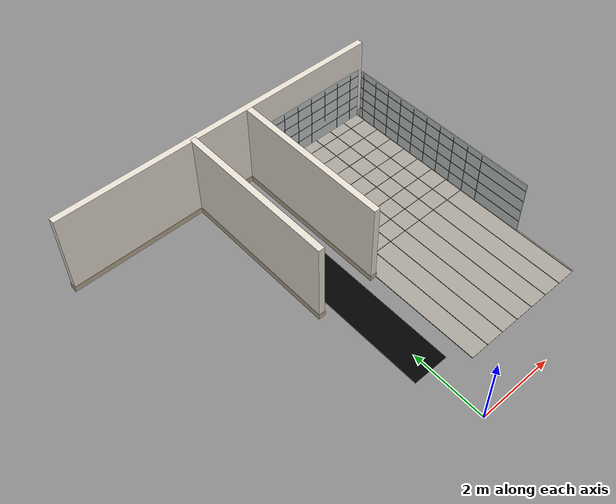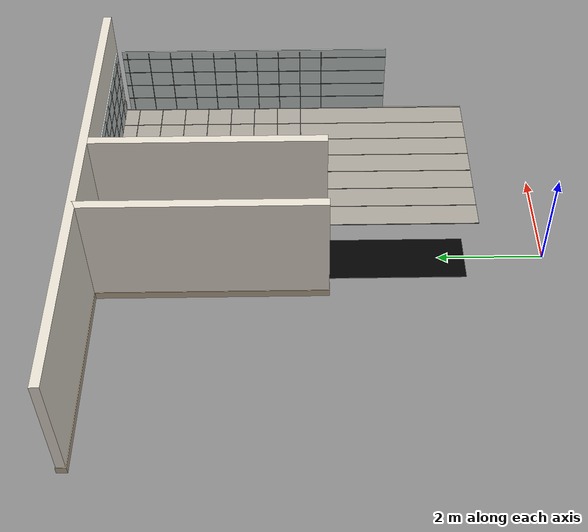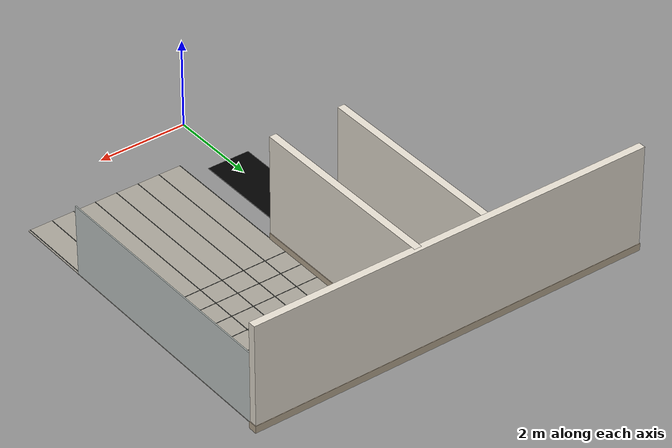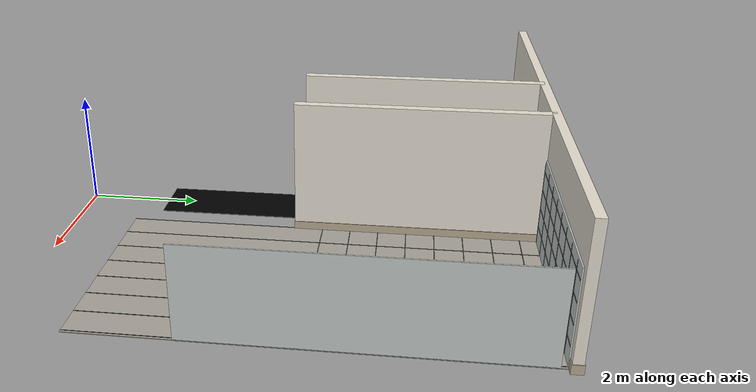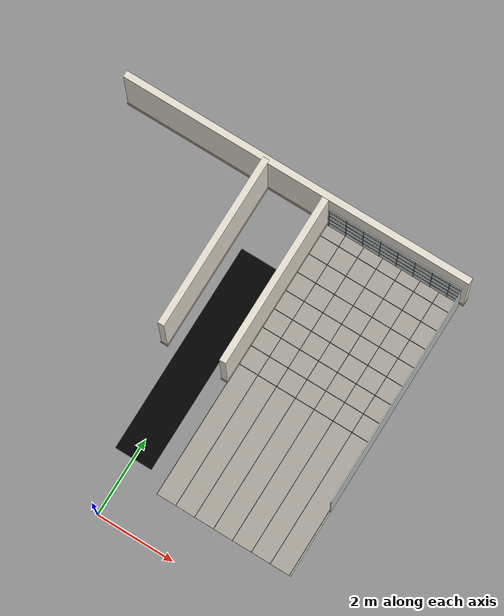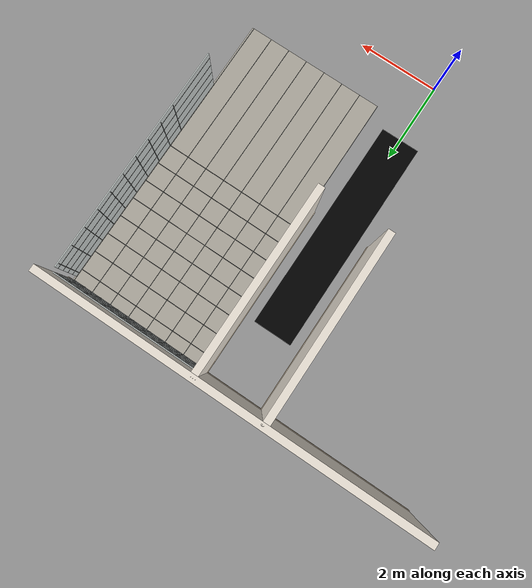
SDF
<sdf version="1.9">
 <world name="tangying_home">
  <model name="wall_outer_north">
   <pose>0 8.5 1.2 0 -0 0</pose>
   <static>true</static>
   <link name="body">
    <inertial>
     <pose>0 0 -0.0422303355034 0 -0 0</pose>
     <mass>7280.393024</mass>
     <inertia>
      <ixx>3716.612141078708</ixx>
      <iyy>52876.7876105292</iyy>
      <izz>49192.48564998741</izz>
      <ixy>0.0</ixy>
      <ixz>0.0</ixz>
      <iyz>0.0</iyz>
     </inertia>
    </inertial>
    <collision name="geom-55">
     <geometry><box><size>9 0.16 2.4</size></box></geometry>
     <surface><friction><ode><mu>1.0</mu><mu2>1.0</mu2></ode></friction></surface>
    </collision>
    <visual name="geom-55">
     <geometry><box><size>9 0.16 2.4</size></box></geometry>
     <material>
      <ambient>0.899999976158 0.879999995232 0.839999973774 1</ambient>
      <diffuse>0.899999976158 0.879999995232 0.839999973774 1</diffuse>
     </material>
    </visual>
    <visual name="geom-56">
     <geometry><box><size>9.004 0.164 2.404</size></box></geometry>
     <material>
      <ambient>0.899999976158 0.870000004768 0.819999992847 1</ambient>
      <diffuse>0.899999976158 0.870000004768 0.819999992847 1</diffuse>
     </material>
    </visual>
    <visual name="geom-57">
     <pose>0 0 -1.12 0 -0 0</pose>
     <geometry><box><size>9.03 0.19 0.16</size></box></geometry>
     <material>
      <ambient>0.72000002861 0.660000026226 0.569999992847 1</ambient>
      <diffuse>0.72000002861 0.660000026226 0.569999992847 1</diffuse>
     </material>
    </visual>
   </link>
  </model>
  <model name="wall_corridor_kitchen_north">
   <pose>0.8 6.3 1.2 0 -0 0</pose>
   <static>true</static>
   <link name="body">
    <inertial>
     <pose>0 0 -0.0423618718995 0 -0 0</pose>
     <mass>3560.575424</mass>
     <inertia>
      <ixx>7562.507721730673</ixx>
      <iyy>1817.945601170019</iyy>
      <izz>5760.3646265759735</izz>
      <ixy>0.0</ixy>
      <ixz>0.0</ixz>
      <iyz>0.0</iyz>
     </inertia>
    </inertial>
    <collision name="geom-67">
     <geometry><box><size>0.16 4.4 2.4</size></box></geometry>
     <surface><friction><ode><mu>1.0</mu><mu2>1.0</mu2></ode></friction></surface>
    </collision>
    <visual name="geom-67">
     <geometry><box><size>0.16 4.4 2.4</size></box></geometry>
     <material>
      <ambient>0.879999995232 0.819999992847 0.740000009537 1</ambient>
      <diffuse>0.879999995232 0.819999992847 0.740000009537 1</diffuse>
     </material>
    </visual>
    <visual name="geom-68">
     <geometry><box><size>0.164 4.404 2.404</size></box></geometry>
     <material>
      <ambient>0.899999976158 0.870000004768 0.819999992847 1</ambient>
      <diffuse>0.899999976158 0.870000004768 0.819999992847 1</diffuse>
     </material>
    </visual>
    <visual name="geom-69">
     <pose>0 0 -1.12 0 -0 0</pose>
     <geometry><box><size>0.19 4.43 0.16</size></box></geometry>
     <material>
      <ambient>0.72000002861 0.660000026226 0.569999992847 1</ambient>
      <diffuse>0.72000002861 0.660000026226 0.569999992847 1</diffuse>
     </material>
    </visual>
   </link>
  </model>
  <model name="wall_corridor_bed_north">
   <pose>-0.8 6.3 1.2 0 -0 0</pose>
   <static>true</static>
   <link name="body">
    <inertial>
     <pose>0 0 -0.0423618718995 0 -0 0</pose>
     <mass>3560.575424</mass>
     <inertia>
      <ixx>7562.507721730673</ixx>
      <iyy>1817.945601170019</iyy>
      <izz>5760.3646265759735</izz>
      <ixy>0.0</ixy>
      <ixz>0.0</ixz>
      <iyz>0.0</iyz>
     </inertia>
    </inertial>
    <collision name="geom-73">
     <geometry><box><size>0.16 4.4 2.4</size></box></geometry>
     <surface><friction><ode><mu>1.0</mu><mu2>1.0</mu2></ode></friction></surface>
    </collision>
    <visual name="geom-73">
     <geometry><box><size>0.16 4.4 2.4</size></box></geometry>
     <material>
      <ambient>0.879999995232 0.819999992847 0.740000009537 1</ambient>
      <diffuse>0.879999995232 0.819999992847 0.740000009537 1</diffuse>
     </material>
    </visual>
    <visual name="geom-74">
     <geometry><box><size>0.164 4.404 2.404</size></box></geometry>
     <material>
      <ambient>0.899999976158 0.870000004768 0.819999992847 1</ambient>
      <diffuse>0.899999976158 0.870000004768 0.819999992847 1</diffuse>
     </material>
    </visual>
    <visual name="geom-75">
     <pose>0 0 -1.12 0 -0 0</pose>
     <geometry><box><size>0.19 4.43 0.16</size></box></geometry>
     <material>
      <ambient>0.72000002861 0.660000026226 0.569999992847 1</ambient>
      <diffuse>0.72000002861 0.660000026226 0.569999992847 1</diffuse>
     </material>
    </visual>
   </link>
  </model>
  <model name="home_corridor">
   <pose>0 4.2 0.006 0 -0 0</pose>
   <static>true</static>
   <link name="body">
    <inertial>
     <mass>51.84</mass>
     <inertia>
      <ixx>125.97163200000001</ixx>
      <iyy>3.9817440000000004</iyy>
      <izz>129.95251200000004</izz>
      <ixy>0.0</ixy>
      <ixz>0.0</ixz>
      <iyz>0.0</iyz>
     </inertia>
    </inertial>
    <visual name="geom-83">
     <geometry><box><size>0.96 5.4 0.01</size></box></geometry>
     <material><ambient>0 0 0 0</ambient><diffuse>0 0 0 0</diffuse></material>
    </visual>
   </link>
  </model>
  <model name="kitchen">
   <pose>2.5 4.7 0.006 0 -0 0</pose>
   <static>true</static>
   <link name="body">
    <inertial>
     <mass>75.0</mass>
     <inertia>
      <ixx>56.25062499999999</ixx>
      <iyy>39.063125</iyy>
      <izz>95.3125</izz>
      <ixy>0.0</ixy>
      <ixz>0.0</ixz>
      <iyz>0.0</iyz>
     </inertia>
    </inertial>
    <visual name="geom-84">
     <geometry><box><size>2.5 3 0.01</size></box></geometry>
     <material><ambient>0 0 0 0</ambient><diffuse>0 0 0 0</diffuse></material>
    </visual>
   </link>
  </model>
  <model name="kitchen_tiles">
   <pose>2.65 4.75 0.012 0 -0 0</pose>
   <static>true</static>
   <link name="body">
    <inertial>
     <mass>310.104</mass>
     <inertia>
      <ixx>1377.1239012479998</ixx>
      <iyy>323.84532844800003</iyy>
      <izz>1700.9617872</izz>
      <ixy>0.0</ixy>
      <ixz>0.0</ixz>
      <iyz>0.0</iyz>
     </inertia>
    </inertial>
    <visual name="geom-89">
     <geometry><box><size>3.54 7.3 0.012</size></box></geometry>
     <material>
      <ambient>0.660000026226 0.639999985695 0.600000023842 1</ambient>
      <diffuse>0.660000026226 0.639999985695 0.600000023842 1</diffuse>
      <pbr>
       <metal>
        <albedo_map>/assets/xlerobot-home/textures/texture-7.png</albedo_map>
        <roughness>0.85</roughness>
        <metalness>0</metalness>
       </metal>
      </pbr>
     </material>
    </visual>
   </link>
  </model>
  <model name="kitchen_wall_tile_north">
   <pose>2.65 8.405 0.8 0 -0 0</pose>
   <static>true</static>
   <link name="body">
    <inertial>
     <mass>132.096</mass>
     <inertia>
      <ixx>28.18682060800001</ixx>
      <iyy>158.44474879999999</iyy>
      <izz>130.270609408</izz>
      <ixy>0.0</ixy>
      <ixz>0.0</ixz>
      <iyz>0.0</iyz>
     </inertia>
    </inertial>
    <visual name="geom-145">
     <geometry><box><size>3.44 0.024 1.6</size></box></geometry>
     <material>
      <ambient>0.759999990463 0.790000021458 0.77999997139 1</ambient>
      <diffuse>0.759999990463 0.790000021458 0.77999997139 1</diffuse>
     </material>
    </visual>
   </link>
  </model>
  <model name="kitchen_wall_tile_east">
   <pose>4.405 5.55 0.8 0 -0 0</pose>
   <static>true</static>
   <link name="body">
    <inertial>
     <mass>211.20000000000002</mass>
     <inertia>
      <ixx>577.456</ixx>
      <iyy>45.06613760000002</iyy>
      <izz>532.4101376</izz>
      <ixy>0.0</ixy>
      <ixz>0.0</ixz>
      <iyz>0.0</iyz>
     </inertia>
    </inertial>
    <visual name="geom-146">
     <geometry><box><size>0.024 5.5 1.6</size></box></geometry>
     <material>
      <ambient>0.759999990463 0.790000021458 0.77999997139 1</ambient>
      <diffuse>0.759999990463 0.790000021458 0.77999997139 1</diffuse>
     </material>
    </visual>
   </link>
  </model>
  <model name="kitchen_floor_grout_x_0">
   <pose>0.88 4.75 0.02 0 -0 0</pose>
   <static>true</static>
   <link name="body">
    <inertial>
     <mass>0.35040000000000004</mass>
     <inertia>
      <ixx>1.5560684672000005</ixx>
      <iyy>4.672000000000001e-06</iyy>
      <izz>1.5560722048000004</izz>
      <ixy>0.0</ixy>
      <ixz>0.0</ixz>
      <iyz>0.0</iyz>
     </inertia>
    </inertial>
    <visual name="geom-149">
     <geometry><box><size>0.012 7.3 0.004</size></box></geometry>
     <material>
      <ambient>0.300000011921 0.310000002384 0.300000011921 1</ambient>
      <diffuse>0.300000011921 0.310000002384 0.300000011921 1</diffuse>
     </material>
    </visual>
   </link>
  </model>
  <model name="kitchen_floor_grout_x_1">
   <pose>1.38 4.75 0.02 0 -0 0</pose>
   <static>true</static>
   <link name="body">
    <inertial>
     <mass>0.35040000000000004</mass>
     <inertia>
      <ixx>1.5560684672000005</ixx>
      <iyy>4.672000000000001e-06</iyy>
      <izz>1.5560722048000004</izz>
      <ixy>0.0</ixy>
      <ixz>0.0</ixz>
      <iyz>0.0</iyz>
     </inertia>
    </inertial>
    <visual name="geom-150">
     <geometry><box><size>0.012 7.3 0.004</size></box></geometry>
     <material>
      <ambient>0.300000011921 0.310000002384 0.300000011921 1</ambient>
      <diffuse>0.300000011921 0.310000002384 0.300000011921 1</diffuse>
     </material>
    </visual>
   </link>
  </model>
  <model name="kitchen_floor_grout_x_2">
   <pose>1.88 4.75 0.02 0 -0 0</pose>
   <static>true</static>
   <link name="body">
    <inertial>
     <mass>0.35040000000000004</mass>
     <inertia>
      <ixx>1.5560684672000005</ixx>
      <iyy>4.672000000000001e-06</iyy>
      <izz>1.5560722048000004</izz>
      <ixy>0.0</ixy>
      <ixz>0.0</ixz>
      <iyz>0.0</iyz>
     </inertia>
    </inertial>
    <visual name="geom-151">
     <geometry><box><size>0.012 7.3 0.004</size></box></geometry>
     <material>
      <ambient>0.300000011921 0.310000002384 0.300000011921 1</ambient>
      <diffuse>0.300000011921 0.310000002384 0.300000011921 1</diffuse>
     </material>
    </visual>
   </link>
  </model>
  <model name="kitchen_floor_grout_x_3">
   <pose>2.38 4.75 0.02 0 -0 0</pose>
   <static>true</static>
   <link name="body">
    <inertial>
     <mass>0.35040000000000004</mass>
     <inertia>
      <ixx>1.5560684672000005</ixx>
      <iyy>4.672000000000001e-06</iyy>
      <izz>1.5560722048000004</izz>
      <ixy>0.0</ixy>
      <ixz>0.0</ixz>
      <iyz>0.0</iyz>
     </inertia>
    </inertial>
    <visual name="geom-152">
     <geometry><box><size>0.012 7.3 0.004</size></box></geometry>
     <material>
      <ambient>0.300000011921 0.310000002384 0.300000011921 1</ambient>
      <diffuse>0.300000011921 0.310000002384 0.300000011921 1</diffuse>
     </material>
    </visual>
   </link>
  </model>
  <model name="kitchen_floor_grout_x_4">
   <pose>2.88 4.75 0.02 0 -0 0</pose>
   <static>true</static>
   <link name="body">
    <inertial>
     <mass>0.35040000000000004</mass>
     <inertia>
      <ixx>1.5560684672000005</ixx>
      <iyy>4.672000000000001e-06</iyy>
      <izz>1.5560722048000004</izz>
      <ixy>0.0</ixy>
      <ixz>0.0</ixz>
      <iyz>0.0</iyz>
     </inertia>
    </inertial>
    <visual name="geom-153">
     <geometry><box><size>0.012 7.3 0.004</size></box></geometry>
     <material>
      <ambient>0.300000011921 0.310000002384 0.300000011921 1</ambient>
      <diffuse>0.300000011921 0.310000002384 0.300000011921 1</diffuse>
     </material>
    </visual>
   </link>
  </model>
  <model name="kitchen_floor_grout_x_5">
   <pose>3.38 4.75 0.02 0 -0 0</pose>
   <static>true</static>
   <link name="body">
    <inertial>
     <mass>0.35040000000000004</mass>
     <inertia>
      <ixx>1.5560684672000005</ixx>
      <iyy>4.672000000000001e-06</iyy>
      <izz>1.5560722048000004</izz>
      <ixy>0.0</ixy>
      <ixz>0.0</ixz>
      <iyz>0.0</iyz>
     </inertia>
    </inertial>
    <visual name="geom-154">
     <geometry><box><size>0.012 7.3 0.004</size></box></geometry>
     <material>
      <ambient>0.300000011921 0.310000002384 0.300000011921 1</ambient>
      <diffuse>0.300000011921 0.310000002384 0.300000011921 1</diffuse>
     </material>
    </visual>
   </link>
  </model>
  <model name="kitchen_floor_grout_x_6">
   <pose>3.88 4.75 0.02 0 -0 0</pose>
   <static>true</static>
   <link name="body">
    <inertial>
     <mass>0.35040000000000004</mass>
     <inertia>
      <ixx>1.5560684672000005</ixx>
      <iyy>4.672000000000001e-06</iyy>
      <izz>1.5560722048000004</izz>
      <ixy>0.0</ixy>
      <ixz>0.0</ixz>
      <iyz>0.0</iyz>
     </inertia>
    </inertial>
    <visual name="geom-155">
     <geometry><box><size>0.012 7.3 0.004</size></box></geometry>
     <material>
      <ambient>0.300000011921 0.310000002384 0.300000011921 1</ambient>
      <diffuse>0.300000011921 0.310000002384 0.300000011921 1</diffuse>
     </material>
    </visual>
   </link>
  </model>
  <model name="kitchen_floor_grout_x_7">
   <pose>4.38 4.75 0.02 0 -0 0</pose>
   <static>true</static>
   <link name="body">
    <inertial>
     <mass>0.35040000000000004</mass>
     <inertia>
      <ixx>1.5560684672000005</ixx>
      <iyy>4.672000000000001e-06</iyy>
      <izz>1.5560722048000004</izz>
      <ixy>0.0</ixy>
      <ixz>0.0</ixz>
      <iyz>0.0</iyz>
     </inertia>
    </inertial>
    <visual name="geom-156">
     <geometry><box><size>0.012 7.3 0.004</size></box></geometry>
     <material>
      <ambient>0.300000011921 0.310000002384 0.300000011921 1</ambient>
      <diffuse>0.300000011921 0.310000002384 0.300000011921 1</diffuse>
     </material>
    </visual>
   </link>
  </model>
  <model name="kitchen_floor_grout_y_7">
   <pose>2.65 4.6 0.02 0 -0 0</pose>
   <static>true</static>
   <link name="body">
    <inertial>
     <mass>0.16992000000000002</mass>
     <inertia>
      <ixx>2.2656000000000004e-06</ixx>
      <iyy>0.17744768256000001</iyy>
      <izz>0.17744949504000004</izz>
      <ixy>0.0</ixy>
      <ixz>0.0</ixz>
      <iyz>0.0</iyz>
     </inertia>
    </inertial>
    <visual name="geom-164">
     <geometry><box><size>3.54 0.012 0.004</size></box></geometry>
     <material>
      <ambient>0.300000011921 0.310000002384 0.300000011921 1</ambient>
      <diffuse>0.300000011921 0.310000002384 0.300000011921 1</diffuse>
     </material>
    </visual>
   </link>
  </model>
  <model name="kitchen_floor_grout_y_8">
   <pose>2.65 5.1 0.02 0 -0 0</pose>
   <static>true</static>
   <link name="body">
    <inertial>
     <mass>0.16992000000000002</mass>
     <inertia>
      <ixx>2.2656000000000004e-06</ixx>
      <iyy>0.17744768256000001</iyy>
      <izz>0.17744949504000004</izz>
      <ixy>0.0</ixy>
      <ixz>0.0</ixz>
      <iyz>0.0</iyz>
     </inertia>
    </inertial>
    <visual name="geom-165">
     <geometry><box><size>3.54 0.012 0.004</size></box></geometry>
     <material>
      <ambient>0.300000011921 0.310000002384 0.300000011921 1</ambient>
      <diffuse>0.300000011921 0.310000002384 0.300000011921 1</diffuse>
     </material>
    </visual>
   </link>
  </model>
  <model name="kitchen_floor_grout_y_9">
   <pose>2.65 5.6 0.02 0 -0 0</pose>
   <static>true</static>
   <link name="body">
    <inertial>
     <mass>0.16992000000000002</mass>
     <inertia>
      <ixx>2.2656000000000004e-06</ixx>
      <iyy>0.17744768256000001</iyy>
      <izz>0.17744949504000004</izz>
      <ixy>0.0</ixy>
      <ixz>0.0</ixz>
      <iyz>0.0</iyz>
     </inertia>
    </inertial>
    <visual name="geom-166">
     <geometry><box><size>3.54 0.012 0.004</size></box></geometry>
     <material>
      <ambient>0.300000011921 0.310000002384 0.300000011921 1</ambient>
      <diffuse>0.300000011921 0.310000002384 0.300000011921 1</diffuse>
     </material>
    </visual>
   </link>
  </model>
  <model name="kitchen_floor_grout_y_10">
   <pose>2.65 6.1 0.02 0 -0 0</pose>
   <static>true</static>
   <link name="body">
    <inertial>
     <mass>0.16992000000000002</mass>
     <inertia>
      <ixx>2.2656000000000004e-06</ixx>
      <iyy>0.17744768256000001</iyy>
      <izz>0.17744949504000004</izz>
      <ixy>0.0</ixy>
      <ixz>0.0</ixz>
      <iyz>0.0</iyz>
     </inertia>
    </inertial>
    <visual name="geom-167">
     <geometry><box><size>3.54 0.012 0.004</size></box></geometry>
     <material>
      <ambient>0.300000011921 0.310000002384 0.300000011921 1</ambient>
      <diffuse>0.300000011921 0.310000002384 0.300000011921 1</diffuse>
     </material>
    </visual>
   </link>
  </model>
  <model name="kitchen_floor_grout_y_11">
   <pose>2.65 6.6 0.02 0 -0 0</pose>
   <static>true</static>
   <link name="body">
    <inertial>
     <mass>0.16992000000000002</mass>
     <inertia>
      <ixx>2.2656000000000004e-06</ixx>
      <iyy>0.17744768256000001</iyy>
      <izz>0.17744949504000004</izz>
      <ixy>0.0</ixy>
      <ixz>0.0</ixz>
      <iyz>0.0</iyz>
     </inertia>
    </inertial>
    <visual name="geom-168">
     <geometry><box><size>3.54 0.012 0.004</size></box></geometry>
     <material>
      <ambient>0.300000011921 0.310000002384 0.300000011921 1</ambient>
      <diffuse>0.300000011921 0.310000002384 0.300000011921 1</diffuse>
     </material>
    </visual>
   </link>
  </model>
  <model name="kitchen_floor_grout_y_12">
   <pose>2.65 7.1 0.02 0 -0 0</pose>
   <static>true</static>
   <link name="body">
    <inertial>
     <mass>0.16992000000000002</mass>
     <inertia>
      <ixx>2.2656000000000004e-06</ixx>
      <iyy>0.17744768256000001</iyy>
      <izz>0.17744949504000004</izz>
      <ixy>0.0</ixy>
      <ixz>0.0</ixz>
      <iyz>0.0</iyz>
     </inertia>
    </inertial>
    <visual name="geom-169">
     <geometry><box><size>3.54 0.012 0.004</size></box></geometry>
     <material>
      <ambient>0.300000011921 0.310000002384 0.300000011921 1</ambient>
      <diffuse>0.300000011921 0.310000002384 0.300000011921 1</diffuse>
     </material>
    </visual>
   </link>
  </model>
  <model name="kitchen_floor_grout_y_13">
   <pose>2.65 7.6 0.02 0 -0 0</pose>
   <static>true</static>
   <link name="body">
    <inertial>
     <mass>0.16992000000000002</mass>
     <inertia>
      <ixx>2.2656000000000004e-06</ixx>
      <iyy>0.17744768256000001</iyy>
      <izz>0.17744949504000004</izz>
      <ixy>0.0</ixy>
      <ixz>0.0</ixz>
      <iyz>0.0</iyz>
     </inertia>
    </inertial>
    <visual name="geom-170">
     <geometry><box><size>3.54 0.012 0.004</size></box></geometry>
     <material>
      <ambient>0.300000011921 0.310000002384 0.300000011921 1</ambient>
      <diffuse>0.300000011921 0.310000002384 0.300000011921 1</diffuse>
     </material>
    </visual>
   </link>
  </model>
  <model name="kitchen_floor_grout_y_14">
   <pose>2.65 8.1 0.02 0 -0 0</pose>
   <static>true</static>
   <link name="body">
    <inertial>
     <mass>0.16992000000000002</mass>
     <inertia>
      <ixx>2.2656000000000004e-06</ixx>
      <iyy>0.17744768256000001</iyy>
      <izz>0.17744949504000004</izz>
      <ixy>0.0</ixy>
      <ixz>0.0</ixz>
      <iyz>0.0</iyz>
     </inertia>
    </inertial>
    <visual name="geom-171">
     <geometry><box><size>3.54 0.012 0.004</size></box></geometry>
     <material>
      <ambient>0.300000011921 0.310000002384 0.300000011921 1</ambient>
      <diffuse>0.300000011921 0.310000002384 0.300000011921 1</diffuse>
     </material>
    </visual>
   </link>
  </model>
  <model name="kitchen_north_grout_v_0">
   <pose>0.93 8.391 0.775 0 -0 0</pose>
   <static>true</static>
   <link name="body">
    <inertial>
     <mass>0.14880000000000002</mass>
     <inertia>
      <ixx>0.02979179360000001</ixx>
      <iyy>0.02979278560000001</iyy>
      <izz>2.5792000000000006e-06</izz>
      <ixy>0.0</ixy>
      <ixz>0.0</ixz>
      <iyz>0.0</iyz>
     </inertia>
    </inertial>
    <visual name="geom-187">
     <geometry><box><size>0.012 0.008 1.55</size></box></geometry>
     <material>
      <ambient>0.300000011921 0.310000002384 0.300000011921 1</ambient>
      <diffuse>0.300000011921 0.310000002384 0.300000011921 1</diffuse>
     </material>
    </visual>
   </link>
  </model>
  <model name="kitchen_north_grout_v_1">
   <pose>1.38 8.391 0.775 0 -0 0</pose>
   <static>true</static>
   <link name="body">
    <inertial>
     <mass>0.14880000000000002</mass>
     <inertia>
      <ixx>0.02979179360000001</ixx>
      <iyy>0.02979278560000001</iyy>
      <izz>2.5792000000000006e-06</izz>
      <ixy>0.0</ixy>
      <ixz>0.0</ixz>
      <iyz>0.0</iyz>
     </inertia>
    </inertial>
    <visual name="geom-188">
     <geometry><box><size>0.012 0.008 1.55</size></box></geometry>
     <material>
      <ambient>0.300000011921 0.310000002384 0.300000011921 1</ambient>
      <diffuse>0.300000011921 0.310000002384 0.300000011921 1</diffuse>
     </material>
    </visual>
   </link>
  </model>
  <model name="kitchen_north_grout_v_2">
   <pose>1.83 8.391 0.775 0 -0 0</pose>
   <static>true</static>
   <link name="body">
    <inertial>
     <mass>0.14880000000000002</mass>
     <inertia>
      <ixx>0.02979179360000001</ixx>
      <iyy>0.02979278560000001</iyy>
      <izz>2.5792000000000006e-06</izz>
      <ixy>0.0</ixy>
      <ixz>0.0</ixz>
      <iyz>0.0</iyz>
     </inertia>
    </inertial>
    <visual name="geom-189">
     <geometry><box><size>0.012 0.008 1.55</size></box></geometry>
     <material>
      <ambient>0.300000011921 0.310000002384 0.300000011921 1</ambient>
      <diffuse>0.300000011921 0.310000002384 0.300000011921 1</diffuse>
     </material>
    </visual>
   </link>
  </model>
  <model name="kitchen_north_grout_v_3">
   <pose>2.28 8.391 0.775 0 -0 0</pose>
   <static>true</static>
   <link name="body">
    <inertial>
     <mass>0.14880000000000002</mass>
     <inertia>
      <ixx>0.02979179360000001</ixx>
      <iyy>0.02979278560000001</iyy>
      <izz>2.5792000000000006e-06</izz>
      <ixy>0.0</ixy>
      <ixz>0.0</ixz>
      <iyz>0.0</iyz>
     </inertia>
    </inertial>
    <visual name="geom-190">
     <geometry><box><size>0.012 0.008 1.55</size></box></geometry>
     <material>
      <ambient>0.300000011921 0.310000002384 0.300000011921 1</ambient>
      <diffuse>0.300000011921 0.310000002384 0.300000011921 1</diffuse>
     </material>
    </visual>
   </link>
  </model>
  <model name="kitchen_north_grout_v_4">
   <pose>2.73 8.391 0.775 0 -0 0</pose>
   <static>true</static>
   <link name="body">
    <inertial>
     <mass>0.14880000000000002</mass>
     <inertia>
      <ixx>0.02979179360000001</ixx>
      <iyy>0.02979278560000001</iyy>
      <izz>2.5792000000000006e-06</izz>
      <ixy>0.0</ixy>
      <ixz>0.0</ixz>
      <iyz>0.0</iyz>
     </inertia>
    </inertial>
    <visual name="geom-191">
     <geometry><box><size>0.012 0.008 1.55</size></box></geometry>
     <material>
      <ambient>0.300000011921 0.310000002384 0.300000011921 1</ambient>
      <diffuse>0.300000011921 0.310000002384 0.300000011921 1</diffuse>
     </material>
    </visual>
   </link>
  </model>
  <model name="kitchen_north_grout_v_5">
   <pose>3.18 8.391 0.775 0 -0 0</pose>
   <static>true</static>
   <link name="body">
    <inertial>
     <mass>0.14880000000000002</mass>
     <inertia>
      <ixx>0.02979179360000001</ixx>
      <iyy>0.02979278560000001</iyy>
      <izz>2.5792000000000006e-06</izz>
      <ixy>0.0</ixy>
      <ixz>0.0</ixz>
      <iyz>0.0</iyz>
     </inertia>
    </inertial>
    <visual name="geom-192">
     <geometry><box><size>0.012 0.008 1.55</size></box></geometry>
     <material>
      <ambient>0.300000011921 0.310000002384 0.300000011921 1</ambient>
      <diffuse>0.300000011921 0.310000002384 0.300000011921 1</diffuse>
     </material>
    </visual>
   </link>
  </model>
  <model name="kitchen_north_grout_v_6">
   <pose>3.63 8.391 0.775 0 -0 0</pose>
   <static>true</static>
   <link name="body">
    <inertial>
     <mass>0.14880000000000002</mass>
     <inertia>
      <ixx>0.02979179360000001</ixx>
      <iyy>0.02979278560000001</iyy>
      <izz>2.5792000000000006e-06</izz>
      <ixy>0.0</ixy>
      <ixz>0.0</ixz>
      <iyz>0.0</iyz>
     </inertia>
    </inertial>
    <visual name="geom-193">
     <geometry><box><size>0.012 0.008 1.55</size></box></geometry>
     <material>
      <ambient>0.300000011921 0.310000002384 0.300000011921 1</ambient>
      <diffuse>0.300000011921 0.310000002384 0.300000011921 1</diffuse>
     </material>
    </visual>
   </link>
  </model>
  <model name="kitchen_north_grout_v_7">
   <pose>4.08 8.391 0.775 0 -0 0</pose>
   <static>true</static>
   <link name="body">
    <inertial>
     <mass>0.14880000000000002</mass>
     <inertia>
      <ixx>0.02979179360000001</ixx>
      <iyy>0.02979278560000001</iyy>
      <izz>2.5792000000000006e-06</izz>
      <ixy>0.0</ixy>
      <ixz>0.0</ixz>
      <iyz>0.0</iyz>
     </inertia>
    </inertial>
    <visual name="geom-194">
     <geometry><box><size>0.012 0.008 1.55</size></box></geometry>
     <material>
      <ambient>0.300000011921 0.310000002384 0.300000011921 1</ambient>
      <diffuse>0.300000011921 0.310000002384 0.300000011921 1</diffuse>
     </material>
    </visual>
   </link>
  </model>
  <model name="kitchen_north_grout_h_0">
   <pose>2.65 8.391 0.35 0 -0 0</pose>
   <static>true</static>
   <link name="body">
    <inertial>
     <mass>0.33024</mass>
     <inertia>
      <ixx>5.72416e-06</ixx>
      <iyy>0.32566463487999997</iyy>
      <izz>0.32566243327999994</izz>
      <ixy>0.0</ixy>
      <ixz>0.0</ixz>
      <iyz>0.0</iyz>
     </inertia>
    </inertial>
    <visual name="geom-195">
     <geometry><box><size>3.44 0.008 0.012</size></box></geometry>
     <material>
      <ambient>0.300000011921 0.310000002384 0.300000011921 1</ambient>
      <diffuse>0.300000011921 0.310000002384 0.300000011921 1</diffuse>
     </material>
    </visual>
   </link>
  </model>
  <model name="kitchen_north_grout_h_1">
   <pose>2.65 8.391 0.7 0 -0 0</pose>
   <static>true</static>
   <link name="body">
    <inertial>
     <mass>0.33024</mass>
     <inertia>
      <ixx>5.72416e-06</ixx>
      <iyy>0.32566463487999997</iyy>
      <izz>0.32566243327999994</izz>
      <ixy>0.0</ixy>
      <ixz>0.0</ixz>
      <iyz>0.0</iyz>
     </inertia>
    </inertial>
    <visual name="geom-196">
     <geometry><box><size>3.44 0.008 0.012</size></box></geometry>
     <material>
      <ambient>0.300000011921 0.310000002384 0.300000011921 1</ambient>
      <diffuse>0.300000011921 0.310000002384 0.300000011921 1</diffuse>
     </material>
    </visual>
   </link>
  </model>
  <model name="kitchen_north_grout_h_2">
   <pose>2.65 8.391 1.05 0 -0 0</pose>
   <static>true</static>
   <link name="body">
    <inertial>
     <mass>0.33024</mass>
     <inertia>
      <ixx>5.72416e-06</ixx>
      <iyy>0.32566463487999997</iyy>
      <izz>0.32566243327999994</izz>
      <ixy>0.0</ixy>
      <ixz>0.0</ixz>
      <iyz>0.0</iyz>
     </inertia>
    </inertial>
    <visual name="geom-197">
     <geometry><box><size>3.44 0.008 0.012</size></box></geometry>
     <material>
      <ambient>0.300000011921 0.310000002384 0.300000011921 1</ambient>
      <diffuse>0.300000011921 0.310000002384 0.300000011921 1</diffuse>
     </material>
    </visual>
   </link>
  </model>
  <model name="kitchen_north_grout_h_3">
   <pose>2.65 8.391 1.4 0 -0 0</pose>
   <static>true</static>
   <link name="body">
    <inertial>
     <mass>0.33024</mass>
     <inertia>
      <ixx>5.72416e-06</ixx>
      <iyy>0.32566463487999997</iyy>
      <izz>0.32566243327999994</izz>
      <ixy>0.0</ixy>
      <ixz>0.0</ixz>
      <iyz>0.0</iyz>
     </inertia>
    </inertial>
    <visual name="geom-198">
     <geometry><box><size>3.44 0.008 0.012</size></box></geometry>
     <material>
      <ambient>0.300000011921 0.310000002384 0.300000011921 1</ambient>
      <diffuse>0.300000011921 0.310000002384 0.300000011921 1</diffuse>
     </material>
    </visual>
   </link>
  </model>
  <model name="kitchen_east_grout_v_3">
   <pose>4.391 4.15 0.775 0 -0 0</pose>
   <static>true</static>
   <link name="body">
    <inertial>
     <mass>0.14880000000000002</mass>
     <inertia>
      <ixx>0.02979278560000001</ixx>
      <iyy>0.02979179360000001</iyy>
      <izz>2.5792000000000006e-06</izz>
      <ixy>0.0</ixy>
      <ixz>0.0</ixz>
      <iyz>0.0</iyz>
     </inertia>
    </inertial>
    <visual name="geom-202">
     <geometry><box><size>0.008 0.012 1.55</size></box></geometry>
     <material>
      <ambient>0.300000011921 0.310000002384 0.300000011921 1</ambient>
      <diffuse>0.300000011921 0.310000002384 0.300000011921 1</diffuse>
     </material>
    </visual>
   </link>
  </model>
  <model name="kitchen_east_grout_v_4">
   <pose>4.391 4.6 0.775 0 -0 0</pose>
   <static>true</static>
   <link name="body">
    <inertial>
     <mass>0.14880000000000002</mass>
     <inertia>
      <ixx>0.02979278560000001</ixx>
      <iyy>0.02979179360000001</iyy>
      <izz>2.5792000000000006e-06</izz>
      <ixy>0.0</ixy>
      <ixz>0.0</ixz>
      <iyz>0.0</iyz>
     </inertia>
    </inertial>
    <visual name="geom-203">
     <geometry><box><size>0.008 0.012 1.55</size></box></geometry>
     <material>
      <ambient>0.300000011921 0.310000002384 0.300000011921 1</ambient>
      <diffuse>0.300000011921 0.310000002384 0.300000011921 1</diffuse>
     </material>
    </visual>
   </link>
  </model>
  <model name="kitchen_east_grout_v_5">
   <pose>4.391 5.05 0.775 0 -0 0</pose>
   <static>true</static>
   <link name="body">
    <inertial>
     <mass>0.14880000000000002</mass>
     <inertia>
      <ixx>0.02979278560000001</ixx>
      <iyy>0.02979179360000001</iyy>
      <izz>2.5792000000000006e-06</izz>
      <ixy>0.0</ixy>
      <ixz>0.0</ixz>
      <iyz>0.0</iyz>
     </inertia>
    </inertial>
    <visual name="geom-204">
     <geometry><box><size>0.008 0.012 1.55</size></box></geometry>
     <material>
      <ambient>0.300000011921 0.310000002384 0.300000011921 1</ambient>
      <diffuse>0.300000011921 0.310000002384 0.300000011921 1</diffuse>
     </material>
    </visual>
   </link>
  </model>
  <model name="kitchen_east_grout_v_6">
   <pose>4.391 5.5 0.775 0 -0 0</pose>
   <static>true</static>
   <link name="body">
    <inertial>
     <mass>0.14880000000000002</mass>
     <inertia>
      <ixx>0.02979278560000001</ixx>
      <iyy>0.02979179360000001</iyy>
      <izz>2.5792000000000006e-06</izz>
      <ixy>0.0</ixy>
      <ixz>0.0</ixz>
      <iyz>0.0</iyz>
     </inertia>
    </inertial>
    <visual name="geom-205">
     <geometry><box><size>0.008 0.012 1.55</size></box></geometry>
     <material>
      <ambient>0.300000011921 0.310000002384 0.300000011921 1</ambient>
      <diffuse>0.300000011921 0.310000002384 0.300000011921 1</diffuse>
     </material>
    </visual>
   </link>
  </model>
  <model name="kitchen_east_grout_v_7">
   <pose>4.391 5.95 0.775 0 -0 0</pose>
   <static>true</static>
   <link name="body">
    <inertial>
     <mass>0.14880000000000002</mass>
     <inertia>
      <ixx>0.02979278560000001</ixx>
      <iyy>0.02979179360000001</iyy>
      <izz>2.5792000000000006e-06</izz>
      <ixy>0.0</ixy>
      <ixz>0.0</ixz>
      <iyz>0.0</iyz>
     </inertia>
    </inertial>
    <visual name="geom-206">
     <geometry><box><size>0.008 0.012 1.55</size></box></geometry>
     <material>
      <ambient>0.300000011921 0.310000002384 0.300000011921 1</ambient>
      <diffuse>0.300000011921 0.310000002384 0.300000011921 1</diffuse>
     </material>
    </visual>
   </link>
  </model>
  <model name="kitchen_east_grout_v_8">
   <pose>4.391 6.4 0.775 0 -0 0</pose>
   <static>true</static>
   <link name="body">
    <inertial>
     <mass>0.14880000000000002</mass>
     <inertia>
      <ixx>0.02979278560000001</ixx>
      <iyy>0.02979179360000001</iyy>
      <izz>2.5792000000000006e-06</izz>
      <ixy>0.0</ixy>
      <ixz>0.0</ixz>
      <iyz>0.0</iyz>
     </inertia>
    </inertial>
    <visual name="geom-207">
     <geometry><box><size>0.008 0.012 1.55</size></box></geometry>
     <material>
      <ambient>0.300000011921 0.310000002384 0.300000011921 1</ambient>
      <diffuse>0.300000011921 0.310000002384 0.300000011921 1</diffuse>
     </material>
    </visual>
   </link>
  </model>
  <model name="kitchen_east_grout_v_9">
   <pose>4.391 6.85 0.775 0 -0 0</pose>
   <static>true</static>
   <link name="body">
    <inertial>
     <mass>0.14880000000000002</mass>
     <inertia>
      <ixx>0.02979278560000001</ixx>
      <iyy>0.02979179360000001</iyy>
      <izz>2.5792000000000006e-06</izz>
      <ixy>0.0</ixy>
      <ixz>0.0</ixz>
      <iyz>0.0</iyz>
     </inertia>
    </inertial>
    <visual name="geom-208">
     <geometry><box><size>0.008 0.012 1.55</size></box></geometry>
     <material>
      <ambient>0.300000011921 0.310000002384 0.300000011921 1</ambient>
      <diffuse>0.300000011921 0.310000002384 0.300000011921 1</diffuse>
     </material>
    </visual>
   </link>
  </model>
  <model name="kitchen_east_grout_v_10">
   <pose>4.391 7.3 0.775 0 -0 0</pose>
   <static>true</static>
   <link name="body">
    <inertial>
     <mass>0.14880000000000002</mass>
     <inertia>
      <ixx>0.02979278560000001</ixx>
      <iyy>0.02979179360000001</iyy>
      <izz>2.5792000000000006e-06</izz>
      <ixy>0.0</ixy>
      <ixz>0.0</ixz>
      <iyz>0.0</iyz>
     </inertia>
    </inertial>
    <visual name="geom-209">
     <geometry><box><size>0.008 0.012 1.55</size></box></geometry>
     <material>
      <ambient>0.300000011921 0.310000002384 0.300000011921 1</ambient>
      <diffuse>0.300000011921 0.310000002384 0.300000011921 1</diffuse>
     </material>
    </visual>
   </link>
  </model>
  <model name="kitchen_east_grout_v_11">
   <pose>4.391 7.75 0.775 0 -0 0</pose>
   <static>true</static>
   <link name="body">
    <inertial>
     <mass>0.14880000000000002</mass>
     <inertia>
      <ixx>0.02979278560000001</ixx>
      <iyy>0.02979179360000001</iyy>
      <izz>2.5792000000000006e-06</izz>
      <ixy>0.0</ixy>
      <ixz>0.0</ixz>
      <iyz>0.0</iyz>
     </inertia>
    </inertial>
    <visual name="geom-210">
     <geometry><box><size>0.008 0.012 1.55</size></box></geometry>
     <material>
      <ambient>0.300000011921 0.310000002384 0.300000011921 1</ambient>
      <diffuse>0.300000011921 0.310000002384 0.300000011921 1</diffuse>
     </material>
    </visual>
   </link>
  </model>
  <model name="kitchen_east_grout_v_12">
   <pose>4.391 8.2 0.775 0 -0 0</pose>
   <static>true</static>
   <link name="body">
    <inertial>
     <mass>0.14880000000000002</mass>
     <inertia>
      <ixx>0.02979278560000001</ixx>
      <iyy>0.02979179360000001</iyy>
      <izz>2.5792000000000006e-06</izz>
      <ixy>0.0</ixy>
      <ixz>0.0</ixz>
      <iyz>0.0</iyz>
     </inertia>
    </inertial>
    <visual name="geom-211">
     <geometry><box><size>0.008 0.012 1.55</size></box></geometry>
     <material>
      <ambient>0.300000011921 0.310000002384 0.300000011921 1</ambient>
      <diffuse>0.300000011921 0.310000002384 0.300000011921 1</diffuse>
     </material>
    </visual>
   </link>
  </model>
  <model name="kitchen_east_grout_h_0">
   <pose>4.391 5.55 0.35 0 -0 0</pose>
   <static>true</static>
   <link name="body">
    <inertial>
     <mass>0.5280000000000001</mass>
     <inertia>
      <ixx>1.3310063360000008</ixx>
      <iyy>9.152000000000003e-06</iyy>
      <izz>1.3310028160000007</izz>
      <ixy>0.0</ixy>
      <ixz>0.0</ixz>
      <iyz>0.0</iyz>
     </inertia>
    </inertial>
    <visual name="geom-212">
     <geometry><box><size>0.008 5.5 0.012</size></box></geometry>
     <material>
      <ambient>0.300000011921 0.310000002384 0.300000011921 1</ambient>
      <diffuse>0.300000011921 0.310000002384 0.300000011921 1</diffuse>
     </material>
    </visual>
   </link>
  </model>
  <model name="kitchen_east_grout_h_1">
   <pose>4.391 5.55 0.7 0 -0 0</pose>
   <static>true</static>
   <link name="body">
    <inertial>
     <mass>0.5280000000000001</mass>
     <inertia>
      <ixx>1.3310063360000008</ixx>
      <iyy>9.152000000000003e-06</iyy>
      <izz>1.3310028160000007</izz>
      <ixy>0.0</ixy>
      <ixz>0.0</ixz>
      <iyz>0.0</iyz>
     </inertia>
    </inertial>
    <visual name="geom-213">
     <geometry><box><size>0.008 5.5 0.012</size></box></geometry>
     <material>
      <ambient>0.300000011921 0.310000002384 0.300000011921 1</ambient>
      <diffuse>0.300000011921 0.310000002384 0.300000011921 1</diffuse>
     </material>
    </visual>
   </link>
  </model>
  <model name="kitchen_east_grout_h_2">
   <pose>4.391 5.55 1.05 0 -0 0</pose>
   <static>true</static>
   <link name="body">
    <inertial>
     <mass>0.5280000000000001</mass>
     <inertia>
      <ixx>1.3310063360000008</ixx>
      <iyy>9.152000000000003e-06</iyy>
      <izz>1.3310028160000007</izz>
      <ixy>0.0</ixy>
      <ixz>0.0</ixz>
      <iyz>0.0</iyz>
     </inertia>
    </inertial>
    <visual name="geom-214">
     <geometry><box><size>0.008 5.5 0.012</size></box></geometry>
     <material>
      <ambient>0.300000011921 0.310000002384 0.300000011921 1</ambient>
      <diffuse>0.300000011921 0.310000002384 0.300000011921 1</diffuse>
     </material>
    </visual>
   </link>
  </model>
  <model name="kitchen_east_grout_h_3">
   <pose>4.391 5.55 1.4 0 -0 0</pose>
   <static>true</static>
   <link name="body">
    <inertial>
     <mass>0.5280000000000001</mass>
     <inertia>
      <ixx>1.3310063360000008</ixx>
      <iyy>9.152000000000003e-06</iyy>
      <izz>1.3310028160000007</izz>
      <ixy>0.0</ixy>
      <ixz>0.0</ixz>
      <iyz>0.0</iyz>
     </inertia>
    </inertial>
    <visual name="geom-215">
     <geometry><box><size>0.008 5.5 0.012</size></box></geometry>
     <material>
      <ambient>0.300000011921 0.310000002384 0.300000011921 1</ambient>
      <diffuse>0.300000011921 0.310000002384 0.300000011921 1</diffuse>
     </material>
    </visual>
   </link>
  </model>
 </world>
</sdf>
